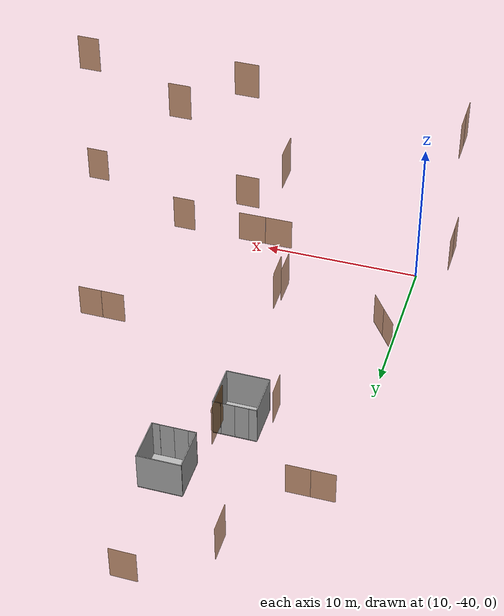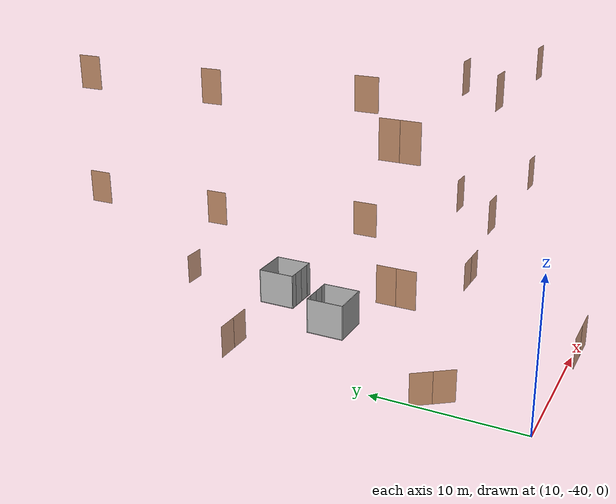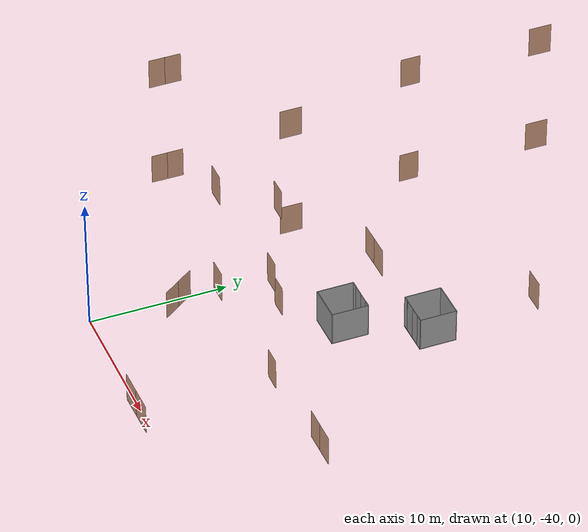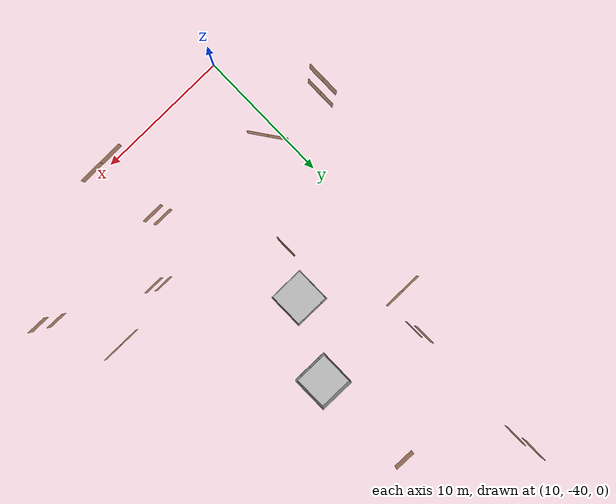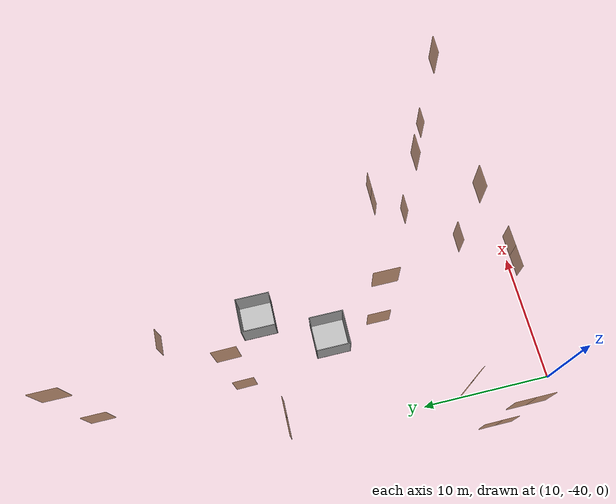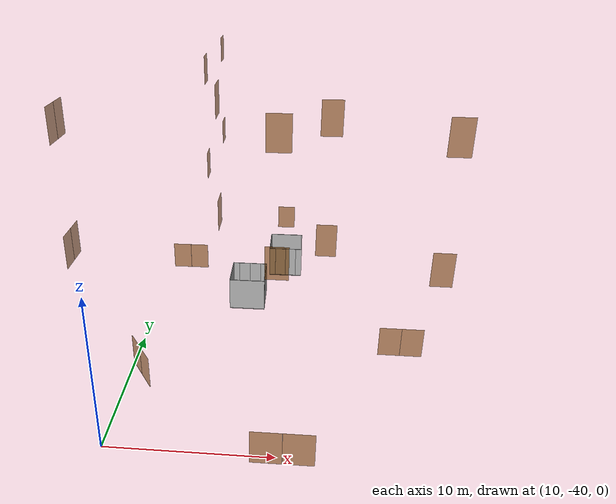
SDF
<sdf version="1.7">
 <world name="world">
  <physics type="ode">
   <max_step_size>0.001</max_step_size>
   <real_time_update_rate>1000</real_time_update_rate>
   <ode>
    <solver><iters>150</iters><sor>1.3</sor></solver>
    <constraints><erp>0.2</erp><cfm>0.0</cfm></constraints>
   </ode>
  </physics>
  <scene><ambient>0.8 0.8 0.8 1.0</ambient><background>0 0 0</background><grid>false</grid></scene>
  <include><uri>model://sun</uri></include>
  <model name="L1_door1">
   <pose>10.753654762321071 -33.79999264551465 0.0 0 0 2.1904910296829736</pose>
   <link name="right">
    <pose>0.7204413525969184 0 1.11 0 0 0</pose>
    <visual name="right_visual">
     <geometry><box><size>1.4308827051938369 0.03 2.2</size></box></geometry>
     <material><ambient>0.5 0.25 0 0.6</ambient><diffuse>0.5 0.25 0 0.6</diffuse></material>
    </visual>
    <collision name="right_collision">
     <geometry><box><size>1.4308827051938369 0.03 2.2</size></box></geometry>
     <surface><contact><collide_bitmask>0x02</collide_bitmask></contact></surface>
    </collision>
    <inertial>
     <mass>50.0</mass>
     <inertia><ixx>20.17041666666667</ixx><iyy>28.69760548342847</iyy><izz>8.534688816761804</izz></inertia>
    </inertial>
   </link>
   <joint name="right_joint" type="revolute">
    <parent>world</parent>
    <child>right</child>
    <axis><xyz>0 0 1</xyz><limit><lower>0</lower><upper>1.57</upper></limit></axis>
    <pose>0.7204413525969184 0 0 0 0 0</pose>
   </joint>
   <link name="left">
    <pose>-0.7204413525969184 0 1.11 0 0 0</pose>
    <visual name="left_visual">
     <geometry><box><size>1.4308827051938369 0.03 2.2</size></box></geometry>
     <material><ambient>0.5 0.25 0 0.6</ambient><diffuse>0.5 0.25 0 0.6</diffuse></material>
    </visual>
    <collision name="left_collision">
     <geometry><box><size>1.4308827051938369 0.03 2.2</size></box></geometry>
     <surface><contact><collide_bitmask>0x02</collide_bitmask></contact></surface>
    </collision>
    <inertial>
     <mass>50.0</mass>
     <inertia><ixx>20.17041666666667</ixx><iyy>28.69760548342847</iyy><izz>8.534688816761804</izz></inertia>
    </inertial>
   </link>
   <joint name="left_joint" type="revolute">
    <parent>world</parent>
    <child>left</child>
    <axis><xyz>0 0 1</xyz><limit><lower>-1.57</lower><upper>0</upper></limit></axis>
    <pose>-0.7204413525969184 0 0 0 0 0</pose>
   </joint>
  </model>
  <model name="L1_door2">
   <pose>11.515053553551752 -19.600764056030513 0.0 0 0 -3.1369488994516814</pose>
   <link name="right">
    <pose>0.7374085791900343 0 1.11 0 0 0</pose>
    <visual name="right_visual">
     <geometry><box><size>1.4648171583800687 0.03 2.2</size></box></geometry>
     <material><ambient>0.5 0.25 0 0.6</ambient><diffuse>0.5 0.25 0 0.6</diffuse></material>
    </visual>
    <collision name="right_collision">
     <geometry><box><size>1.4648171583800687 0.03 2.2</size></box></geometry>
     <surface><contact><collide_bitmask>0x02</collide_bitmask></contact></surface>
    </collision>
    <inertial>
     <mass>50.0</mass>
     <inertia><ixx>20.17041666666667</ixx><iyy>29.107038781186084</iyy><izz>8.944122114519415</izz></inertia>
    </inertial>
   </link>
   <joint name="right_joint" type="prismatic">
    <parent>world</parent>
    <child>right</child>
    <axis>
     <xyz>1 0 0</xyz>
     <limit><lower>0.0</lower><upper>1.4748171583800687</upper><effort>500.0</effort></limit>
    </axis>
   </joint>
   <link name="left">
    <pose>-0.7374085791900343 0 1.11 0 0 0</pose>
    <visual name="left_visual">
     <geometry><box><size>1.4648171583800687 0.03 2.2</size></box></geometry>
     <material><ambient>0.5 0.25 0 0.6</ambient><diffuse>0.5 0.25 0 0.6</diffuse></material>
    </visual>
    <collision name="left_collision">
     <geometry><box><size>1.4648171583800687 0.03 2.2</size></box></geometry>
     <surface><contact><collide_bitmask>0x02</collide_bitmask></contact></surface>
    </collision>
    <inertial>
     <mass>50.0</mass>
     <inertia><ixx>20.17041666666667</ixx><iyy>29.107038781186084</iyy><izz>8.944122114519415</izz></inertia>
    </inertial>
   </link>
   <joint name="left_joint" type="prismatic">
    <parent>world</parent>
    <child>left</child>
    <axis>
     <xyz>1 0 0</xyz>
     <limit><lower>-1.4748171583800687</lower><upper>0.0</upper><effort>500.0</effort></limit>
    </axis>
   </joint>
  </model>
  <model name="L1_door3">
   <pose>20.334155710474544 -40.40725483879361 0.0 0 0 -3.137402798278724</pose>
   <link name="right">
    <pose>0.9069965354571369 0 1.11 0 0 0</pose>
    <visual name="right_visual">
     <geometry><box><size>1.8039930709142737 0.03 2.2</size></box></geometry>
     <material><ambient>0.5 0.25 0 0.6</ambient><diffuse>0.5 0.25 0 0.6</diffuse></material>
    </visual>
    <collision name="right_collision">
     <geometry><box><size>1.8039930709142737 0.03 2.2</size></box></geometry>
     <surface><contact><collide_bitmask>0x02</collide_bitmask></contact></surface>
    </collision>
    <inertial>
     <mass>50.0</mass>
     <inertia><ixx>20.17041666666667</ixx><iyy>33.726629166277974</iyy><izz>13.563712499611302</izz></inertia>
    </inertial>
   </link>
   <joint name="right_joint" type="prismatic">
    <parent>world</parent>
    <child>right</child>
    <axis>
     <xyz>1 0 0</xyz>
     <limit><lower>0.0</lower><upper>1.8139930709142738</upper><effort>500.0</effort></limit>
    </axis>
   </joint>
   <link name="left">
    <pose>-0.9069965354571369 0 1.11 0 0 0</pose>
    <visual name="left_visual">
     <geometry><box><size>1.8039930709142737 0.03 2.2</size></box></geometry>
     <material><ambient>0.5 0.25 0 0.6</ambient><diffuse>0.5 0.25 0 0.6</diffuse></material>
    </visual>
    <collision name="left_collision">
     <geometry><box><size>1.8039930709142737 0.03 2.2</size></box></geometry>
     <surface><contact><collide_bitmask>0x02</collide_bitmask></contact></surface>
    </collision>
    <inertial>
     <mass>50.0</mass>
     <inertia><ixx>20.17041666666667</ixx><iyy>33.726629166277974</iyy><izz>13.563712499611302</izz></inertia>
    </inertial>
   </link>
   <joint name="left_joint" type="prismatic">
    <parent>world</parent>
    <child>left</child>
    <axis>
     <xyz>1 0 0</xyz>
     <limit><lower>-1.8139930709142738</lower><upper>0.0</upper><effort>500.0</effort></limit>
    </axis>
   </joint>
  </model>
  <model name="L1_door4">
   <pose>19.549120677562087 -11.10939551168469 0.0 0 0 -0.009497018345977264</pose>
   <link name="right">
    <pose>0 0 1.11 0 0 0</pose>
    <visual name="right_visual">
     <geometry><box><size>1.5905993122484277 0.03 2.2</size></box></geometry>
     <material><ambient>0.5 0.25 0 0.6</ambient><diffuse>0.5 0.25 0 0.6</diffuse></material>
    </visual>
    <collision name="right_collision">
     <geometry><box><size>1.5905993122484277 0.03 2.2</size></box></geometry>
     <surface><contact><collide_bitmask>0x02</collide_bitmask></contact></surface>
    </collision>
    <inertial>
     <mass>50.0</mass>
     <inertia><ixx>20.17041666666667</ixx><iyy>30.70835905052155</iyy><izz>10.545442383854882</izz></inertia>
    </inertial>
   </link>
   <joint name="right_joint" type="revolute">
    <parent>world</parent>
    <child>right</child>
    <axis><xyz>0 0 1</xyz><limit><lower>0</lower><upper>1.57</upper></limit></axis>
    <pose>0.8002996561242138 0 0 0 0 0</pose>
   </joint>
  </model>
  <model name="L1_door5">
   <pose>28.079493196697264 -30.43738230505557 0.0 0 0 -0.0023958500301941633</pose>
   <link name="right">
    <pose>0.7494993011996198 0 1.11 0 0 0</pose>
    <visual name="right_visual">
     <geometry><box><size>1.4889986023992396 0.03 2.2</size></box></geometry>
     <material><ambient>0.5 0.25 0 0.6</ambient><diffuse>0.5 0.25 0 0.6</diffuse></material>
    </visual>
    <collision name="right_collision">
     <geometry><box><size>1.4889986023992396 0.03 2.2</size></box></geometry>
     <surface><contact><collide_bitmask>0x02</collide_bitmask></contact></surface>
    </collision>
    <inertial>
     <mass>50.0</mass>
     <inertia><ixx>20.17041666666667</ixx><iyy>29.404653491445373</iyy><izz>9.241736824778705</izz></inertia>
    </inertial>
   </link>
   <joint name="right_joint" type="prismatic">
    <parent>world</parent>
    <child>right</child>
    <axis>
     <xyz>1 0 0</xyz>
     <limit><lower>0.0</lower><upper>1.4989986023992397</upper><effort>500.0</effort></limit>
    </axis>
   </joint>
   <link name="left">
    <pose>-0.7494993011996198 0 1.11 0 0 0</pose>
    <visual name="left_visual">
     <geometry><box><size>1.4889986023992396 0.03 2.2</size></box></geometry>
     <material><ambient>0.5 0.25 0 0.6</ambient><diffuse>0.5 0.25 0 0.6</diffuse></material>
    </visual>
    <collision name="left_collision">
     <geometry><box><size>1.4889986023992396 0.03 2.2</size></box></geometry>
     <surface><contact><collide_bitmask>0x02</collide_bitmask></contact></surface>
    </collision>
    <inertial>
     <mass>50.0</mass>
     <inertia><ixx>20.17041666666667</ixx><iyy>29.404653491445373</iyy><izz>9.241736824778705</izz></inertia>
    </inertial>
   </link>
   <joint name="left_joint" type="prismatic">
    <parent>world</parent>
    <child>left</child>
    <axis>
     <xyz>1 0 0</xyz>
     <limit><lower>-1.4989986023992397</lower><upper>0.0</upper><effort>500.0</effort></limit>
    </axis>
   </joint>
  </model>
  <model name="L2_door2">
   <pose>6.76857286388343 -32.90682600516501 8.0 0 0 1.571612558028263</pose>
   <link name="right">
    <pose>0.5675078680191911 0 1.11 0 0 0</pose>
    <visual name="right_visual">
     <geometry><box><size>1.1250157360383821 0.03 2.2</size></box></geometry>
     <material><ambient>0.5 0.25 0 0.6</ambient><diffuse>0.5 0.25 0 0.6</diffuse></material>
    </visual>
    <collision name="right_collision">
     <geometry><box><size>1.1250157360383821 0.03 2.2</size></box></geometry>
     <surface><contact><collide_bitmask>0x02</collide_bitmask></contact></surface>
    </collision>
    <inertial>
     <mass>50.0</mass>
     <inertia><ixx>20.17041666666667</ixx><iyy>25.44025169305827</iyy><izz>5.277335026391595</izz></inertia>
    </inertial>
   </link>
   <joint name="right_joint" type="revolute">
    <parent>world</parent>
    <child>right</child>
    <axis><xyz>0 0 -1</xyz><limit><lower>0</lower><upper>1.57</upper></limit></axis>
    <pose>0.5675078680191911 0 0 0 0 0</pose>
   </joint>
   <link name="left">
    <pose>-0.5675078680191911 0 1.11 0 0 0</pose>
    <visual name="left_visual">
     <geometry><box><size>1.1250157360383821 0.03 2.2</size></box></geometry>
     <material><ambient>0.5 0.25 0 0.6</ambient><diffuse>0.5 0.25 0 0.6</diffuse></material>
    </visual>
    <collision name="left_collision">
     <geometry><box><size>1.1250157360383821 0.03 2.2</size></box></geometry>
     <surface><contact><collide_bitmask>0x02</collide_bitmask></contact></surface>
    </collision>
    <inertial>
     <mass>50.0</mass>
     <inertia><ixx>20.17041666666667</ixx><iyy>25.44025169305827</iyy><izz>5.277335026391595</izz></inertia>
    </inertial>
   </link>
   <joint name="left_joint" type="revolute">
    <parent>world</parent>
    <child>left</child>
    <axis><xyz>0 0 -1</xyz><limit><lower>-1.57</lower><upper>0</upper></limit></axis>
    <pose>-0.5675078680191911 0 0 0 0 0</pose>
   </joint>
  </model>
  <model name="L2_door5">
   <pose>19.62055855578882 -34.21478433126707 8.0 0 0 3.1365461417546308</pose>
   <link name="right">
    <pose>0 0 1.11 0 0 0</pose>
    <visual name="right_visual">
     <geometry><box><size>1.4278667928054123 0.03 2.2</size></box></geometry>
     <material><ambient>0.5 0.25 0 0.6</ambient><diffuse>0.5 0.25 0 0.6</diffuse></material>
    </visual>
    <collision name="right_collision">
     <geometry><box><size>1.4278667928054123 0.03 2.2</size></box></geometry>
     <surface><contact><collide_bitmask>0x02</collide_bitmask></contact></surface>
    </collision>
    <inertial>
     <mass>50.0</mass>
     <inertia><ixx>20.17041666666667</ixx><iyy>28.661681574985064</iyy><izz>8.498764908318392</izz></inertia>
    </inertial>
   </link>
   <joint name="right_joint" type="revolute">
    <parent>world</parent>
    <child>right</child>
    <axis><xyz>0 0 -1</xyz><limit><lower>0</lower><upper>1.57</upper></limit></axis>
    <pose>0.7189333964027061 0 0 0 0 0</pose>
   </joint>
  </model>
  <model name="L2_door9">
   <pose>13.018848337594756 -17.76158217016259 8.0 0 0 1.5874688733681936</pose>
   <link name="right">
    <pose>0 0 1.11 0 0 0</pose>
    <visual name="right_visual">
     <geometry><box><size>1.382945881897145 0.03 2.2</size></box></geometry>
     <material><ambient>0.5 0.25 0 0.6</ambient><diffuse>0.5 0.25 0 0.6</diffuse></material>
    </visual>
    <collision name="right_collision">
     <geometry><box><size>1.382945881897145 0.03 2.2</size></box></geometry>
     <surface><contact><collide_bitmask>0x02</collide_bitmask></contact></surface>
    </collision>
    <inertial>
     <mass>50.0</mass>
     <inertia><ixx>20.17041666666667</ixx><iyy>28.13558046773447</iyy><izz>7.9726638010677995</izz></inertia>
    </inertial>
   </link>
   <joint name="right_joint" type="revolute">
    <parent>world</parent>
    <child>right</child>
    <axis><xyz>0 0 -1</xyz><limit><lower>0</lower><upper>1.57</upper></limit></axis>
    <pose>0.6964729409485725 0 0 0 0 0</pose>
   </joint>
  </model>
  <model name="L2_door11">
   <pose>13.070832545372092 -8.29507317951618 8.0 0 0 1.571612558028263</pose>
   <link name="right">
    <pose>0 0 1.11 0 0 0</pose>
    <visual name="right_visual">
     <geometry><box><size>1.5950330216253457 0.03 2.2</size></box></geometry>
     <material><ambient>0.5 0.25 0 0.6</ambient><diffuse>0.5 0.25 0 0.6</diffuse></material>
    </visual>
    <collision name="right_collision">
     <geometry><box><size>1.5950330216253457 0.03 2.2</size></box></geometry>
     <surface><contact><collide_bitmask>0x02</collide_bitmask></contact></surface>
    </collision>
    <inertial>
     <mass>50.0</mass>
     <inertia><ixx>20.17041666666667</ixx><iyy>30.767209750313672</iyy><izz>10.604293083647002</izz></inertia>
    </inertial>
   </link>
   <joint name="right_joint" type="revolute">
    <parent>world</parent>
    <child>right</child>
    <axis><xyz>0 0 -1</xyz><limit><lower>0</lower><upper>1.57</upper></limit></axis>
    <pose>0.8025165108126728 0 0 0 0 0</pose>
   </joint>
  </model>
  <model name="L2_door12">
   <pose>15.28470442617677 -27.2761317707633 8.0 0 0 1.571612558028262</pose>
   <link name="right">
    <pose>0 0 1.11 0 0 0</pose>
    <visual name="right_visual">
     <geometry><box><size>1.5658659299508506 0.03 2.2</size></box></geometry>
     <material><ambient>0.5 0.25 0 0.6</ambient><diffuse>0.5 0.25 0 0.6</diffuse></material>
    </visual>
    <collision name="right_collision">
     <geometry><box><size>1.5658659299508506 0.03 2.2</size></box></geometry>
     <surface><contact><collide_bitmask>0x02</collide_bitmask></contact></surface>
    </collision>
    <inertial>
     <mass>50.0</mass>
     <inertia><ixx>20.17041666666667</ixx><iyy>30.38306712742018</iyy><izz>10.22015046075351</izz></inertia>
    </inertial>
   </link>
   <joint name="right_joint" type="revolute">
    <parent>world</parent>
    <child>right</child>
    <axis><xyz>0 0 1</xyz><limit><lower>0</lower><upper>1.57</upper></limit></axis>
    <pose>0.7879329649754253 0 0 0 0 0</pose>
   </joint>
  </model>
  <model name="L2_door14">
   <pose>22.582882547846204 -31.092638612981972 8.0 0 0 3.137779488569298</pose>
   <link name="right">
    <pose>0 0 1.11 0 0 0</pose>
    <visual name="right_visual">
     <geometry><box><size>1.2889329745237348 0.03 2.2</size></box></geometry>
     <material><ambient>0.5 0.25 0 0.6</ambient><diffuse>0.5 0.25 0 0.6</diffuse></material>
    </visual>
    <collision name="right_collision">
     <geometry><box><size>1.2889329745237348 0.03 2.2</size></box></geometry>
     <surface><contact><collide_bitmask>0x02</collide_bitmask></contact></surface>
    </collision>
    <inertial>
     <mass>50.0</mass>
     <inertia><ixx>20.17041666666667</ixx><iyy>27.088950886727517</iyy><izz>6.926034220060845</izz></inertia>
    </inertial>
   </link>
   <joint name="right_joint" type="revolute">
    <parent>world</parent>
    <child>right</child>
    <axis><xyz>0 0 1</xyz><limit><lower>0</lower><upper>1.57</upper></limit></axis>
    <pose>0.6494664872618674 0 0 0 0 0</pose>
   </joint>
  </model>
  <model name="L2_door15">
   <pose>29.19689685453295 -34.1844883615378 8.0 0 0 3.1287318603676484</pose>
   <link name="right">
    <pose>0 0 1.11 0 0 0</pose>
    <visual name="right_visual">
     <geometry><box><size>1.2884785147293154 0.03 2.2</size></box></geometry>
     <material><ambient>0.5 0.25 0 0.6</ambient><diffuse>0.5 0.25 0 0.6</diffuse></material>
    </visual>
    <collision name="right_collision">
     <geometry><box><size>1.2884785147293154 0.03 2.2</size></box></geometry>
     <surface><contact><collide_bitmask>0x02</collide_bitmask></contact></surface>
    </collision>
    <inertial>
     <mass>50.0</mass>
     <inertia><ixx>20.17041666666667</ixx><iyy>27.0840703454961</iyy><izz>6.921153678829428</izz></inertia>
    </inertial>
   </link>
   <joint name="right_joint" type="revolute">
    <parent>world</parent>
    <child>right</child>
    <axis><xyz>0 0 -1</xyz><limit><lower>0</lower><upper>1.57</upper></limit></axis>
    <pose>0.6492392573646577 0 0 0 0 0</pose>
   </joint>
  </model>
  <model name="L3_door2">
   <pose>6.76857286388343 -32.90682600516501 16.0 0 0 1.571612558028263</pose>
   <link name="right">
    <pose>0.5675078680191911 0 1.11 0 0 0</pose>
    <visual name="right_visual">
     <geometry><box><size>1.1250157360383821 0.03 2.2</size></box></geometry>
     <material><ambient>0.5 0.25 0 0.6</ambient><diffuse>0.5 0.25 0 0.6</diffuse></material>
    </visual>
    <collision name="right_collision">
     <geometry><box><size>1.1250157360383821 0.03 2.2</size></box></geometry>
     <surface><contact><collide_bitmask>0x02</collide_bitmask></contact></surface>
    </collision>
    <inertial>
     <mass>50.0</mass>
     <inertia><ixx>20.17041666666667</ixx><iyy>25.44025169305827</iyy><izz>5.277335026391595</izz></inertia>
    </inertial>
   </link>
   <joint name="right_joint" type="revolute">
    <parent>world</parent>
    <child>right</child>
    <axis><xyz>0 0 -1</xyz><limit><lower>0</lower><upper>1.57</upper></limit></axis>
    <pose>0.5675078680191911 0 0 0 0 0</pose>
   </joint>
   <link name="left">
    <pose>-0.5675078680191911 0 1.11 0 0 0</pose>
    <visual name="left_visual">
     <geometry><box><size>1.1250157360383821 0.03 2.2</size></box></geometry>
     <material><ambient>0.5 0.25 0 0.6</ambient><diffuse>0.5 0.25 0 0.6</diffuse></material>
    </visual>
    <collision name="left_collision">
     <geometry><box><size>1.1250157360383821 0.03 2.2</size></box></geometry>
     <surface><contact><collide_bitmask>0x02</collide_bitmask></contact></surface>
    </collision>
    <inertial>
     <mass>50.0</mass>
     <inertia><ixx>20.17041666666667</ixx><iyy>25.44025169305827</iyy><izz>5.277335026391595</izz></inertia>
    </inertial>
   </link>
   <joint name="left_joint" type="revolute">
    <parent>world</parent>
    <child>left</child>
    <axis><xyz>0 0 -1</xyz><limit><lower>-1.57</lower><upper>0</upper></limit></axis>
    <pose>-0.5675078680191911 0 0 0 0 0</pose>
   </joint>
  </model>
  <model name="L3_door5">
   <pose>19.62055855578882 -34.21478433126707 16.0 0 0 3.1365461417546308</pose>
   <link name="right">
    <pose>0 0 1.11 0 0 0</pose>
    <visual name="right_visual">
     <geometry><box><size>1.4278667928054123 0.03 2.2</size></box></geometry>
     <material><ambient>0.5 0.25 0 0.6</ambient><diffuse>0.5 0.25 0 0.6</diffuse></material>
    </visual>
    <collision name="right_collision">
     <geometry><box><size>1.4278667928054123 0.03 2.2</size></box></geometry>
     <surface><contact><collide_bitmask>0x02</collide_bitmask></contact></surface>
    </collision>
    <inertial>
     <mass>50.0</mass>
     <inertia><ixx>20.17041666666667</ixx><iyy>28.661681574985064</iyy><izz>8.498764908318392</izz></inertia>
    </inertial>
   </link>
   <joint name="right_joint" type="revolute">
    <parent>world</parent>
    <child>right</child>
    <axis><xyz>0 0 -1</xyz><limit><lower>0</lower><upper>1.57</upper></limit></axis>
    <pose>0.7189333964027061 0 0 0 0 0</pose>
   </joint>
  </model>
  <model name="L3_door9">
   <pose>13.018848337594756 -17.76158217016259 16.0 0 0 1.5874688733681936</pose>
   <link name="right">
    <pose>0 0 1.11 0 0 0</pose>
    <visual name="right_visual">
     <geometry><box><size>1.382945881897145 0.03 2.2</size></box></geometry>
     <material><ambient>0.5 0.25 0 0.6</ambient><diffuse>0.5 0.25 0 0.6</diffuse></material>
    </visual>
    <collision name="right_collision">
     <geometry><box><size>1.382945881897145 0.03 2.2</size></box></geometry>
     <surface><contact><collide_bitmask>0x02</collide_bitmask></contact></surface>
    </collision>
    <inertial>
     <mass>50.0</mass>
     <inertia><ixx>20.17041666666667</ixx><iyy>28.13558046773447</iyy><izz>7.9726638010677995</izz></inertia>
    </inertial>
   </link>
   <joint name="right_joint" type="revolute">
    <parent>world</parent>
    <child>right</child>
    <axis><xyz>0 0 -1</xyz><limit><lower>0</lower><upper>1.57</upper></limit></axis>
    <pose>0.6964729409485725 0 0 0 0 0</pose>
   </joint>
  </model>
  <model name="L3_door11">
   <pose>13.070832545372092 -8.29507317951618 16.0 0 0 1.571612558028263</pose>
   <link name="right">
    <pose>0 0 1.11 0 0 0</pose>
    <visual name="right_visual">
     <geometry><box><size>1.5950330216253457 0.03 2.2</size></box></geometry>
     <material><ambient>0.5 0.25 0 0.6</ambient><diffuse>0.5 0.25 0 0.6</diffuse></material>
    </visual>
    <collision name="right_collision">
     <geometry><box><size>1.5950330216253457 0.03 2.2</size></box></geometry>
     <surface><contact><collide_bitmask>0x02</collide_bitmask></contact></surface>
    </collision>
    <inertial>
     <mass>50.0</mass>
     <inertia><ixx>20.17041666666667</ixx><iyy>30.767209750313672</iyy><izz>10.604293083647002</izz></inertia>
    </inertial>
   </link>
   <joint name="right_joint" type="revolute">
    <parent>world</parent>
    <child>right</child>
    <axis><xyz>0 0 -1</xyz><limit><lower>0</lower><upper>1.57</upper></limit></axis>
    <pose>0.8025165108126728 0 0 0 0 0</pose>
   </joint>
  </model>
  <model name="L3_door12">
   <pose>15.28470442617677 -27.2761317707633 16.0 0 0 1.571612558028262</pose>
   <link name="right">
    <pose>0 0 1.11 0 0 0</pose>
    <visual name="right_visual">
     <geometry><box><size>1.5658659299508506 0.03 2.2</size></box></geometry>
     <material><ambient>0.5 0.25 0 0.6</ambient><diffuse>0.5 0.25 0 0.6</diffuse></material>
    </visual>
    <collision name="right_collision">
     <geometry><box><size>1.5658659299508506 0.03 2.2</size></box></geometry>
     <surface><contact><collide_bitmask>0x02</collide_bitmask></contact></surface>
    </collision>
    <inertial>
     <mass>50.0</mass>
     <inertia><ixx>20.17041666666667</ixx><iyy>30.38306712742018</iyy><izz>10.22015046075351</izz></inertia>
    </inertial>
   </link>
   <joint name="right_joint" type="revolute">
    <parent>world</parent>
    <child>right</child>
    <axis><xyz>0 0 1</xyz><limit><lower>0</lower><upper>1.57</upper></limit></axis>
    <pose>0.7879329649754253 0 0 0 0 0</pose>
   </joint>
  </model>
  <model name="L3_door14">
   <pose>22.582882547846204 -31.092638612981972 16.0 0 0 3.137779488569298</pose>
   <link name="right">
    <pose>0 0 1.11 0 0 0</pose>
    <visual name="right_visual">
     <geometry><box><size>1.2889329745237348 0.03 2.2</size></box></geometry>
     <material><ambient>0.5 0.25 0 0.6</ambient><diffuse>0.5 0.25 0 0.6</diffuse></material>
    </visual>
    <collision name="right_collision">
     <geometry><box><size>1.2889329745237348 0.03 2.2</size></box></geometry>
     <surface><contact><collide_bitmask>0x02</collide_bitmask></contact></surface>
    </collision>
    <inertial>
     <mass>50.0</mass>
     <inertia><ixx>20.17041666666667</ixx><iyy>27.088950886727517</iyy><izz>6.926034220060845</izz></inertia>
    </inertial>
   </link>
   <joint name="right_joint" type="revolute">
    <parent>world</parent>
    <child>right</child>
    <axis><xyz>0 0 1</xyz><limit><lower>0</lower><upper>1.57</upper></limit></axis>
    <pose>0.6494664872618674 0 0 0 0 0</pose>
   </joint>
  </model>
  <model name="L3_door15">
   <pose>29.19689685453295 -34.1844883615378 16.0 0 0 3.1287318603676484</pose>
   <link name="right">
    <pose>0 0 1.11 0 0 0</pose>
    <visual name="right_visual">
     <geometry><box><size>1.2884785147293154 0.03 2.2</size></box></geometry>
     <material><ambient>0.5 0.25 0 0.6</ambient><diffuse>0.5 0.25 0 0.6</diffuse></material>
    </visual>
    <collision name="right_collision">
     <geometry><box><size>1.2884785147293154 0.03 2.2</size></box></geometry>
     <surface><contact><collide_bitmask>0x02</collide_bitmask></contact></surface>
    </collision>
    <inertial>
     <mass>50.0</mass>
     <inertia><ixx>20.17041666666667</ixx><iyy>27.0840703454961</iyy><izz>6.921153678829428</izz></inertia>
    </inertial>
   </link>
   <joint name="right_joint" type="revolute">
    <parent>world</parent>
    <child>right</child>
    <axis><xyz>0 0 -1</xyz><limit><lower>0</lower><upper>1.57</upper></limit></axis>
    <pose>0.6492392573646577 0 0 0 0 0</pose>
   </joint>
  </model>
  <model name="Lift1">
   <link name="platform">
    <gravity>false</gravity>
    <inertial>
     <mass>1200</mass>
     <inertia><ixx>729.2500000000001</ixx><iyy>729.2500000000001</iyy><izz>1458.0000000000002</izz></inertia>
    </inertial>
    <visual name="floor_visual">
     <pose>0 0 -0.025 0 0 0</pose>
     <geometry><box><size>2.7 2.7 0.05</size></box></geometry>
     <material>
      <ambient>0.5 0.5 0.5 1</ambient>
      <diffuse>0.7 0.7 0.7 1</diffuse>
      <specular>0.6 0.6 0.6 1</specular>
      <emissive>0.1 0.1 0.1 1</emissive>
     </material>
    </visual>
    <collision name="floor_collision">
     <pose>0 0 -0.025 0 0 0</pose>
     <geometry><box><size>2.7 2.7 0.05</size></box></geometry>
     <surface><contact><collide_bitmask>0x01</collide_bitmask></contact></surface>
    </collision>
    <visual name="frontwall1_visual">
     <pose>0.0 1.3250000000000002 1.25 0 0 0</pose>
     <geometry><box><size>2.7 0.05 2.5</size></box></geometry>
     <material>
      <ambient>0.5 0.5 0.5 1</ambient>
      <diffuse>0.7 0.7 0.7 1</diffuse>
      <specular>0.6 0.6 0.6 1</specular>
      <emissive>0.1 0.1 0.1 1</emissive>
     </material>
    </visual>
    <collision name="frontwall1_collision">
     <pose>0.0 1.3250000000000002 1.25 0 0 0</pose>
     <geometry><box><size>2.7 0.05 2.5</size></box></geometry>
     <surface><contact><collide_bitmask>0x01</collide_bitmask></contact></surface>
    </collision>
    <visual name="backwall1_visual">
     <pose>-1.1 -1.3250000000000002 1.25 0 0 0</pose>
     <geometry><box><size>0.5000000000000001 0.05 2.5</size></box></geometry>
     <material>
      <ambient>0.5 0.5 0.5 1</ambient>
      <diffuse>0.7 0.7 0.7 1</diffuse>
      <specular>0.6 0.6 0.6 1</specular>
      <emissive>0.1 0.1 0.1 1</emissive>
     </material>
    </visual>
    <collision name="backwall1_collision">
     <pose>-1.1 -1.3250000000000002 1.25 0 0 0</pose>
     <geometry><box><size>0.5000000000000001 0.05 2.5</size></box></geometry>
     <surface><contact><collide_bitmask>0x01</collide_bitmask></contact></surface>
    </collision>
    <visual name="backwall2_visual">
     <pose>1.1 -1.3250000000000002 1.25 0 0 0</pose>
     <geometry><box><size>0.5000000000000001 0.05 2.5</size></box></geometry>
     <material>
      <ambient>0.5 0.5 0.5 1</ambient>
      <diffuse>0.7 0.7 0.7 1</diffuse>
      <specular>0.6 0.6 0.6 1</specular>
      <emissive>0.1 0.1 0.1 1</emissive>
     </material>
    </visual>
    <collision name="backwall2_collision">
     <pose>1.1 -1.3250000000000002 1.25 0 0 0</pose>
     <geometry><box><size>0.5000000000000001 0.05 2.5</size></box></geometry>
     <surface><contact><collide_bitmask>0x01</collide_bitmask></contact></surface>
    </collision>
    <visual name="leftwall1_visual">
     <pose>-1.3250000000000002 0.0 1.25 0 0 1.5707963267948966</pose>
     <geometry><box><size>2.6 0.05 2.5</size></box></geometry>
     <material>
      <ambient>0.5 0.5 0.5 1</ambient>
      <diffuse>0.7 0.7 0.7 1</diffuse>
      <specular>0.6 0.6 0.6 1</specular>
      <emissive>0.1 0.1 0.1 1</emissive>
     </material>
    </visual>
    <collision name="leftwall1_collision">
     <pose>-1.3250000000000002 0.0 1.25 0 0 1.5707963267948966</pose>
     <geometry><box><size>2.6 0.05 2.5</size></box></geometry>
     <surface><contact><collide_bitmask>0x01</collide_bitmask></contact></surface>
    </collision>
    <visual name="rightwall1_visual">
     <pose>1.3250000000000002 0.0 1.25 0 0 1.5707963267948966</pose>
     <geometry><box><size>2.6 0.05 2.5</size></box></geometry>
     <material>
      <ambient>0.5 0.5 0.5 1</ambient>
      <diffuse>0.7 0.7 0.7 1</diffuse>
      <specular>0.6 0.6 0.6 1</specular>
      <emissive>0.1 0.1 0.1 1</emissive>
     </material>
    </visual>
    <collision name="rightwall1_collision">
     <pose>1.3250000000000002 0.0 1.25 0 0 1.5707963267948966</pose>
     <geometry><box><size>2.6 0.05 2.5</size></box></geometry>
     <surface><contact><collide_bitmask>0x01</collide_bitmask></contact></surface>
    </collision>
   </link>
   <joint name="cabin_joint" type="prismatic">
    <parent>world</parent>
    <child>platform</child>
    <axis>
     <xyz>0 0 1</xyz>
     <limit><lower>0.0</lower><upper>16.0</upper><effort>1e6</effort></limit>
     <dynamics damping="80.0" friction="1.0"/>
    </axis>
   </joint>
   <link name="right_door">
    <pose>0.425 -1.3250000000000002 1.25 0 0 0</pose>
    <visual name="right_door_visual">
     <geometry><box><size>0.85 0.03 2.5</size></box></geometry>
     <material>
      <ambient>0.5 0.5 0.5 1</ambient>
      <diffuse>0.7 0.7 0.7 1</diffuse>
      <specular>0.6 0.6 0.6 1</specular>
      <emissive>0.1 0.1 0.1 1</emissive>
     </material>
    </visual>
    <collision name="right_door_collision">
     <geometry><box><size>0.85 0.03 2.5</size></box></geometry>
     <surface><contact><collide_bitmask>0x02</collide_bitmask></contact></surface>
    </collision>
   </link>
   <joint name="right_joint" type="prismatic">
    <parent>platform</parent>
    <child>right_door</child>
    <axis><xyz>1 0 0</xyz><limit><lower>0</lower><upper>0.85</upper></limit><dynamics damping="10.0"/></axis>
   </joint>
   <link name="left_door">
    <pose>-0.425 -1.3250000000000002 1.25 0 0 0</pose>
    <visual name="left_door_visual">
     <geometry><box><size>0.85 0.03 2.5</size></box></geometry>
     <material>
      <ambient>0.5 0.5 0.5 1</ambient>
      <diffuse>0.7 0.7 0.7 1</diffuse>
      <specular>0.6 0.6 0.6 1</specular>
      <emissive>0.1 0.1 0.1 1</emissive>
     </material>
    </visual>
    <collision name="left_door_collision">
     <geometry><box><size>0.85 0.03 2.5</size></box></geometry>
     <surface><contact><collide_bitmask>0x02</collide_bitmask></contact></surface>
    </collision>
   </link>
   <joint name="left_joint" type="prismatic">
    <parent>platform</parent>
    <child>left_door</child>
    <axis><xyz>1 0 0</xyz><limit><lower>-0.85</lower><upper>0</upper></limit><dynamics damping="10.0"/></axis>
   </joint>
   <plugin name="lift1_elevator_plugin" filename="libelevator_plugin.so">
    <ros><namespace>/lift1</namespace></ros>
    <cabin_joint>cabin_joint</cabin_joint>
    <right_joint>right_joint</right_joint>
    <left_joint>left_joint</left_joint>
    <floor_heights>0.0 8.0 16.0</floor_heights>
    <door_open_distance>0.85</door_open_distance>
    <kp>300.0</kp>
    <kd>120.0</kd>
    <vel_limit>0.6</vel_limit>
    <acc_limit>1.0</acc_limit>
    <pos_tolerance>0.007</pos_tolerance>
    <pos_tolerance_hyst>0.018</pos_tolerance_hyst>
    <kv_hold>250.0</kv_hold>
    <kd_hold>5.0</kd_hold>
    <kp_hold_force>9000.0</kp_hold_force>
    <c_hold_force>13000.0</c_hold_force>
   </plugin>
   <pose>19.766468308668816 -18.931265422387035 0 0 0 0.0</pose>
  </model>
  <model name="Lift2">
   <link name="platform">
    <gravity>false</gravity>
    <inertial>
     <mass>1200</mass>
     <inertia><ixx>729.2500000000001</ixx><iyy>729.2500000000001</iyy><izz>1458.0000000000002</izz></inertia>
    </inertial>
    <visual name="floor_visual">
     <pose>0 0 -0.025 0 0 0</pose>
     <geometry><box><size>2.7 2.7 0.05</size></box></geometry>
     <material>
      <ambient>0.5 0.5 0.5 1</ambient>
      <diffuse>0.7 0.7 0.7 1</diffuse>
      <specular>0.6 0.6 0.6 1</specular>
      <emissive>0.1 0.1 0.1 1</emissive>
     </material>
    </visual>
    <collision name="floor_collision">
     <pose>0 0 -0.025 0 0 0</pose>
     <geometry><box><size>2.7 2.7 0.05</size></box></geometry>
     <surface><contact><collide_bitmask>0x01</collide_bitmask></contact></surface>
    </collision>
    <visual name="frontwall1_visual">
     <pose>-1.1 1.3250000000000002 1.25 0 0 0</pose>
     <geometry><box><size>0.5000000000000001 0.05 2.5</size></box></geometry>
     <material>
      <ambient>0.5 0.5 0.5 1</ambient>
      <diffuse>0.7 0.7 0.7 1</diffuse>
      <specular>0.6 0.6 0.6 1</specular>
      <emissive>0.1 0.1 0.1 1</emissive>
     </material>
    </visual>
    <collision name="frontwall1_collision">
     <pose>-1.1 1.3250000000000002 1.25 0 0 0</pose>
     <geometry><box><size>0.5000000000000001 0.05 2.5</size></box></geometry>
     <surface><contact><collide_bitmask>0x01</collide_bitmask></contact></surface>
    </collision>
    <visual name="frontwall2_visual">
     <pose>1.1 1.3250000000000002 1.25 0 0 0</pose>
     <geometry><box><size>0.5000000000000001 0.05 2.5</size></box></geometry>
     <material>
      <ambient>0.5 0.5 0.5 1</ambient>
      <diffuse>0.7 0.7 0.7 1</diffuse>
      <specular>0.6 0.6 0.6 1</specular>
      <emissive>0.1 0.1 0.1 1</emissive>
     </material>
    </visual>
    <collision name="frontwall2_collision">
     <pose>1.1 1.3250000000000002 1.25 0 0 0</pose>
     <geometry><box><size>0.5000000000000001 0.05 2.5</size></box></geometry>
     <surface><contact><collide_bitmask>0x01</collide_bitmask></contact></surface>
    </collision>
    <visual name="backwall1_visual">
     <pose>0.0 -1.3250000000000002 1.25 0 0 0</pose>
     <geometry><box><size>2.7 0.05 2.5</size></box></geometry>
     <material>
      <ambient>0.5 0.5 0.5 1</ambient>
      <diffuse>0.7 0.7 0.7 1</diffuse>
      <specular>0.6 0.6 0.6 1</specular>
      <emissive>0.1 0.1 0.1 1</emissive>
     </material>
    </visual>
    <collision name="backwall1_collision">
     <pose>0.0 -1.3250000000000002 1.25 0 0 0</pose>
     <geometry><box><size>2.7 0.05 2.5</size></box></geometry>
     <surface><contact><collide_bitmask>0x01</collide_bitmask></contact></surface>
    </collision>
    <visual name="leftwall1_visual">
     <pose>-1.3250000000000002 0.0 1.25 0 0 1.5707963267948966</pose>
     <geometry><box><size>2.6 0.05 2.5</size></box></geometry>
     <material>
      <ambient>0.5 0.5 0.5 1</ambient>
      <diffuse>0.7 0.7 0.7 1</diffuse>
      <specular>0.6 0.6 0.6 1</specular>
      <emissive>0.1 0.1 0.1 1</emissive>
     </material>
    </visual>
    <collision name="leftwall1_collision">
     <pose>-1.3250000000000002 0.0 1.25 0 0 1.5707963267948966</pose>
     <geometry><box><size>2.6 0.05 2.5</size></box></geometry>
     <surface><contact><collide_bitmask>0x01</collide_bitmask></contact></surface>
    </collision>
    <visual name="rightwall1_visual">
     <pose>1.3250000000000002 0.0 1.25 0 0 1.5707963267948966</pose>
     <geometry><box><size>2.6 0.05 2.5</size></box></geometry>
     <material>
      <ambient>0.5 0.5 0.5 1</ambient>
      <diffuse>0.7 0.7 0.7 1</diffuse>
      <specular>0.6 0.6 0.6 1</specular>
      <emissive>0.1 0.1 0.1 1</emissive>
     </material>
    </visual>
    <collision name="rightwall1_collision">
     <pose>1.3250000000000002 0.0 1.25 0 0 1.5707963267948966</pose>
     <geometry><box><size>2.6 0.05 2.5</size></box></geometry>
     <surface><contact><collide_bitmask>0x01</collide_bitmask></contact></surface>
    </collision>
   </link>
   <joint name="cabin_joint" type="prismatic">
    <parent>world</parent>
    <child>platform</child>
    <axis>
     <xyz>0 0 1</xyz>
     <limit><lower>0.0</lower><upper>16.0</upper><effort>1e6</effort></limit>
     <dynamics damping="80.0" friction="1.0"/>
    </axis>
   </joint>
   <link name="right_door">
    <pose>0.425 1.3250000000000002 1.25 0 0 0</pose>
    <visual name="right_door_visual">
     <geometry><box><size>0.85 0.03 2.5</size></box></geometry>
     <material>
      <ambient>0.5 0.5 0.5 1</ambient>
      <diffuse>0.7 0.7 0.7 1</diffuse>
      <specular>0.6 0.6 0.6 1</specular>
      <emissive>0.1 0.1 0.1 1</emissive>
     </material>
    </visual>
    <collision name="right_door_collision">
     <geometry><box><size>0.85 0.03 2.5</size></box></geometry>
     <surface><contact><collide_bitmask>0x02</collide_bitmask></contact></surface>
    </collision>
   </link>
   <joint name="right_joint" type="prismatic">
    <parent>platform</parent>
    <child>right_door</child>
    <axis><xyz>1 0 0</xyz><limit><lower>0</lower><upper>0.85</upper></limit><dynamics damping="10.0"/></axis>
   </joint>
   <link name="left_door">
    <pose>-0.425 1.3250000000000002 1.25 0 0 0</pose>
    <visual name="left_door_visual">
     <geometry><box><size>0.85 0.03 2.5</size></box></geometry>
     <material>
      <ambient>0.5 0.5 0.5 1</ambient>
      <diffuse>0.7 0.7 0.7 1</diffuse>
      <specular>0.6 0.6 0.6 1</specular>
      <emissive>0.1 0.1 0.1 1</emissive>
     </material>
    </visual>
    <collision name="left_door_collision">
     <geometry><box><size>0.85 0.03 2.5</size></box></geometry>
     <surface><contact><collide_bitmask>0x02</collide_bitmask></contact></surface>
    </collision>
   </link>
   <joint name="left_joint" type="prismatic">
    <parent>platform</parent>
    <child>left_door</child>
    <axis><xyz>1 0 0</xyz><limit><lower>-0.85</lower><upper>0</upper></limit><dynamics damping="10.0"/></axis>
   </joint>
   <pose>16.982458687729547 -24.220883702171648 0 0 0 0.0</pose>
   <plugin name="lift2_elevator_plugin" filename="libelevator_plugin.so">
    <ros><namespace>/lift2</namespace></ros>
    <cabin_joint>cabin_joint</cabin_joint>
    <right_joint>right_joint</right_joint>
    <left_joint>left_joint</left_joint>
    <floor_heights>0.0 8.0 16.0</floor_heights>
    <door_open_distance>0.85</door_open_distance>
    <kp>300.0</kp>
    <kd>120.0</kd>
    <vel_limit>0.6</vel_limit>
    <acc_limit>1.0</acc_limit>
    <pos_tolerance>0.007</pos_tolerance>
    <pos_tolerance_hyst>0.018</pos_tolerance_hyst>
    <kv_hold>250.0</kv_hold>
    <kd_hold>5.0</kd_hold>
    <kp_hold_force>9000.0</kp_hold_force>
    <c_hold_force>13000.0</c_hold_force>
   </plugin>
  </model>
 </world>
</sdf>
